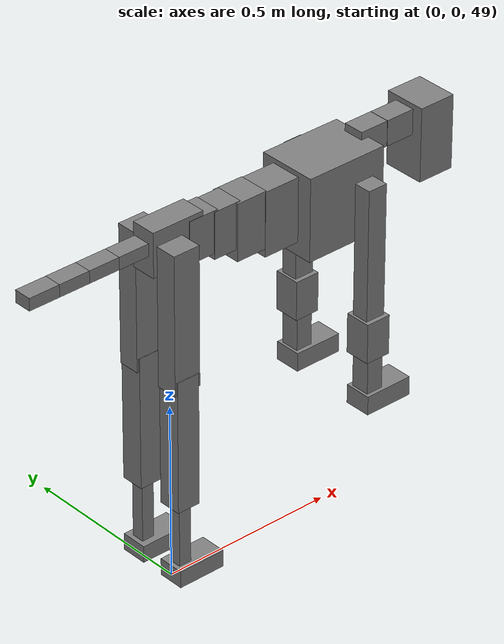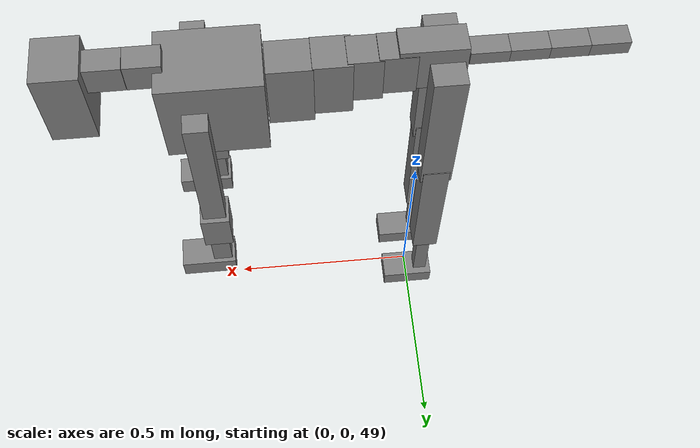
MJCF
<mujoco model="dog">

    <default>
        <joint armature="0.02" stiffness="1" damping="0.2" limited="true"/>
        <geom condim="3" friction="1 0.05 0.05" margin="0.01"/>
        <motor ctrllimited="true" ctrlrange="-1.0 1.0" forcelimited="true" gear="50"/>
    </default>

    <compiler inertiafromgeom="true" angle="radian"/>

    <option timestep="0.016" iterations="50" tolerance="1e-10" solver="Newton" jacobian="dense" cone="pyramidal"/>

    <size nconmax="20000" njmax="60000" nstack="5000000"/>
    <visual>
        <map force="0.1" zfar="30"/>
        <rgba haze="0.15 0.25 0.35 1"/>
        <quality shadowsize="2048"/>
        <global offwidth="800" offheight="800"/>
    </visual>

    <asset>
        <texture type="skybox" builtin="gradient" rgb1="0.3 0.5 0.7" rgb2="0 0 0" width="512" height="512"/>
        <texture name="texplane" type="2d" builtin="checker" rgb1=".2 .3 .4" rgb2=".1 0.15 0.2" width="512" height="512"
                 mark="cross" markrgb=".8 .8 .8"/>
        <texture name="texgeom" type="cube" builtin="flat" mark="cross" width="127" height="1278" rgb1="0.8 0.6 0.4"
                 rgb2="0.8 0.6 0.4" markrgb="1 1 1" random="0.01"/>

        <material name="matplane" reflectance="0.3" texture="texplane" texrepeat="1 1" texuniform="true"/>
        <material name="matgeom" texture="texgeom" texuniform="true" rgba="0.8 0.6 .4 1"/>
    </asset>

    <worldbody>
        <geom name="floor" pos="0 0 0" size="0 0 .25" type="plane" material="matplane" condim="3"/>

        <light directional="false" diffuse=".2 .2 .2" specular="0 0 0" pos="0 0 5" dir="0 0 -1" castshadow="false"/>
        <light mode="targetbodycom" target="torso" directional="false" diffuse=".8 .8 .8" specular="0.3 0.3 0.3"
               pos="0 0 4.0" dir="0 0 -1"/>

        <body name="root" pos="0 0 50">
            <freejoint name="root_1"/>
            <geom type="box" pos="0 0 -0.02" size="0.0774  0.0358  0.063" density="2030"/>

            <body name="spine1" pos="0.054 0 0">
                <joint name="spine1_y" axis="0 1 0" range="0 0.7" limited="true"/>
                <geom type="box" pos="0.02375 0 -0.03" size="0.04375  0.0375  0.05985" density="2030"/>

                <body name="spine2" pos="0.0612 0 0">
                    <joint name="spine2_y" axis="0 1 0" range="-0.15 0.15" limited="true"/>
                    <geom type="box" pos="0.03555  0  -0.04" size="0.04055  0.039  0.06615" density="2030"/>

                    <body name="spine3" pos="0.0730 0 0">
                        <joint name="spine3_y" axis="0 1 0" range="-0.15 0.15" limited="true"/>
                        <geom type="box" pos="0.03555  0  -0.057" size="0.04555  0.0445  0.081" density="2030"/>

                        <body name="spine4" pos="0.0780 0 0">
                            <joint name="spine4_y" axis="0 1 0" range="-0.15 0.15" limited="true"/>
                            <geom type="box" pos="0.05265  0  -0.07" size="0.05265  0.045  0.09135" density="2030"/>

                            <body name="torso" pos="0.1082 0 0">
                                <joint name="torso_y" axis="0 1 0" range="-0.15 0.15" limited="true"/>
                                <geom type="box" pos="0.11925  0  -0.085" size="0.11925  0.085  0.11745"
                                      density="2030"/>

                                <body name="neck1" pos="0.2160  0   0.0180">
                                    <joint name="neck1_y" axis="0 1 0" range="-1.2  -1" limited="true"/>
                                    <geom type="box" pos="0.0423  0  0" size="0.0423  0.03  0.036" density="2325"/>

                                    <body name="neck2" pos="0.0853  0  0">
                                        <joint name="neck2_y" axis="0 1 0" range="0.1  0" limited="true"/>
                                        <geom type="box" pos="0.0423  0  0" size="0.0423  0.03  0.036" density="2325"/>

                                        <body name="head" pos="0.0853  0  0">
                                            <joint name="head_y" axis="0 1 0" range="-0.3  -0.2" limited="true"/>
                                            <geom type="box" pos="0.0531  0  -0.055" size="0.0531  0.06  0.1044"
                                                  density="4030"/>

                                        </body>
                                    </body>
                                </body>

                                <body name="front_shoulder" pos="0.156  0   -0.0480">
                                    <joint name="front_shoulder_y" axis="0 1 0" range="-1 1.5" limited="true"/>
                                    <geom type="box" pos="0 0.13 -0.1734" size="0.0285  0.0244  0.2000" density="1158"/>
                                    <geom type="box" pos="0 -0.13 -0.1734" size="0.0285  0.0244  0.2000"
                                          density="1158"/>

                                    <body name="front_elbow" pos="0  0  -0.3468">
                                        <joint name="front_elbow_y" axis="0 1 0" range="-2 0" limited="true"/>
                                        <geom type="box" pos="0 0.13 -0.0563" size="0.0360  0.0368  0.0563"
                                              density="1081"/>
                                        <geom type="box" pos="0 -0.13 -0.0563" size="0.0360  0.0368  0.0563"
                                              density="1081"/>

                                        <body name="front_wrist" pos="0  0  -0.1126">
                                            <joint name="front_wrist_y" axis="0 1 0" range="-0.2 0" limited="true"/>
                                            <geom type="box" pos="0 0.13 -0.0574" size="0.0241  0.0268  0.0705"
                                                  density="1664"/>
                                            <geom type="box" pos="0 -0.13 -0.0574" size="0.0241  0.0268  0.0705"
                                                  density="1664"/>

                                            <body name="front_finger_end" pos="0  0  -0.1148">
                                                <joint name="front_finger_y" axis="0 1 0" range="-0.4 1"
                                                       limited="true"/>
                                                <geom type="box" pos="0.0381  0.13  -0.0116"
                                                      size="0.0699  0.0381  0.0266" density="1515"/>
                                                <geom type="box" pos="0.0381  -0.13  -0.0116"
                                                      size="0.0699  0.0381  0.0266" density="1515"/>

                                            </body>

                                        </body>
                                    </body>
                                </body>

                            </body>
                        </body>
                    </body>
                </body>
            </body>

            <body name="back_hip" pos="-0.03 0 -0.018">
                <joint name="back_hip_y" axis="0 1 0" range="-1.5 0.3" limited="true"/>
                <geom type="box" pos="0 0.07 -0.1746" size="0.0392  0.0308  0.1974" density="1154"/>
                <geom type="box" pos="0 -0.07 -0.1746" size="0.0392  0.0308  0.1974" density="1154"/>

                <body name="back_knee" pos="0  0  -0.3491">
                    <joint name="back_knee_y" axis="0 1 0" range="0 2.8" limited="true"/>
                    <geom type="box" pos="0 0.07 -0.1742" size="0.0335  0.0331  0.1897" density="1227"/>
                    <geom type="box" pos="0 -0.07 -0.1742" size="0.0335  0.0331  0.1897" density="1227"/>

                    <body name="back_ankle" pos="0  0  -0.3483">
                        <joint name="back_ankle_y" axis="0 1 0" range="-2.2 0" limited="true"/>
                        <geom type="box" pos="0 0.07 -0.1019" size="0.0182  0.0182  0.1131" density="1284"/>
                        <geom type="box" pos="0 -0.07 -0.1019" size="0.0182  0.0182  0.1131" density="1284"/>

                        <body name="back_toe_end" pos="0  0  -0.2037">
                            <joint name="back_toe_y" axis="0 1 0" range="-0.4 1" limited="true"/>
                            <geom type="box" pos="0.0375  0.07  -0.0091" size="0.0687  0.0375  0.0241" density="1515"/>
                            <geom type="box" pos="0.0375  -0.07  -0.0091" size="0.0687  0.0375  0.0241" density="1515"/>

                        </body>
                    </body>
                </body>
            </body>

            <body name="tail1" pos="-0.074 0 -0.006">
                <joint name="tail1_y" axis="0 1 0" range="-0.2 0.2" limited="true"/>
                <geom type="box" pos="-0.0536  0  0" size="0.045  0.025  0.0175" density="1587"/>

                <body name="tail2" pos="-0.09 0 0">
                    <joint name="tail2_y" axis="0 1 0" range="-0.2 0.2" limited="true"/>
                    <geom type="box" pos="-0.0536  0  0" size="0.045  0.025  0.0175" density="1587"/>

                    <body name="tail3" pos="-0.09 0 0">
                        <joint name="tail3_y" axis="0 1 0" range="-0.2 0.2" limited="true"/>
                        <geom type="box" pos="-0.0536  0  0" size="0.045  0.025  0.0175" density="1587"/>

                        <body name="tail4" pos="-0.09 0 0">
                            <joint name="tail4_y" axis="0 1 0" range="-0.2 0.2" limited="true"/>
                            <geom type="box" pos="-0.0536  0  0" size="0.045  0.025  0.0175" density="1587"/>

                        </body>
                    </body>
                </body>
            </body>
        </body>
    </worldbody>

    <actuator>
        <motor joint="spine1_y" forcerange="-150 150     "/>
        <motor joint="spine2_y" forcerange="-150 150     "/>
        <motor joint="spine3_y" forcerange="-150 150     "/>
        <motor joint="spine4_y" forcerange="-150 150     "/>
        <motor joint="torso_y" forcerange="-150 150     "/>
        <motor joint="neck1_y" forcerange="-100 100       "/>
        <motor joint="neck2_y" forcerange="-100 100       "/>
        <motor joint="head_y" forcerange="-150 150       "/>
        <motor joint="front_shoulder_y" forcerange="-130.23 132.33"/>
        <motor joint="front_elbow_y" forcerange="-181.77 186.04"/>
        <motor joint="front_wrist_y" forcerange="-129.09 85.42"/>
        <motor joint="front_finger_y" forcerange="-71.04 92.24"/>
        <motor joint="back_hip_y" forcerange="-285.89 324.22"/>
        <motor joint="back_knee_y" forcerange="-368.04 312.83"/>
        <motor joint="back_angle_y" forcerange="-136.13 55.63"/>
        <motor joint="back_toe_y" forcerange="-91.59 128.23"/>
        <motor joint="tail1_y" forcerange="-50 50     "/>
        <motor joint="tail2_y" forcerange="-50 50     "/>
        <motor joint="tail3_y" forcerange="-50 50     "/>
        <motor joint="tail4_y" forcerange="-50 50     "/>
    </actuator>
</mujoco>
